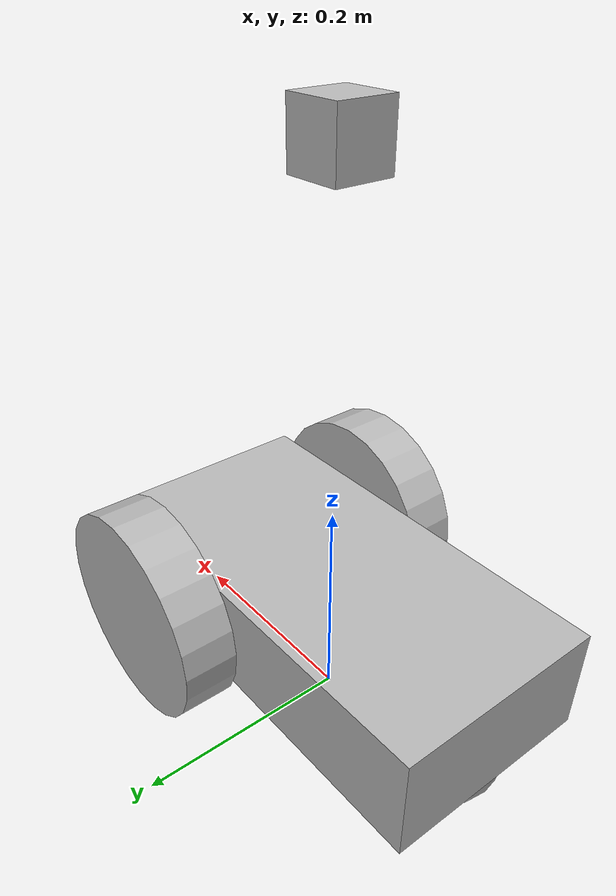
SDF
<?xml version="1.0"?>
<sdf version='1.4'>
  <model name="myrobot">
    <static>false</static>
    <link name="chassis">
        <pose>0 0 .1 0 0 0</pose>

        <collision name="collision">
            <geometry>
                <box>
                    <size>.4 .2 .1</size>
                </box>
            </geometry>
        </collision>

        <visual name="visual">
            <geometry>
                <box>
                    <size>.4 .2 .1</size>
                </box>
            </geometry>
        </visual>

        <collision name='caster_collision'>
            <pose>-0.15 0 -0.05 0 0 0</pose>
            <geometry>
                <sphere>
                <radius>.05</radius>
              </sphere>
            </geometry>

            <surface>
              <friction>
                <ode>
                  <mu>0</mu>
                  <mu2>0</mu2>
                  <slip1>1.0</slip1>
                  <slip2>1.0</slip2>
                </ode>
              </friction>
            </surface>
        </collision>

        <visual name='caster_visual'>
            <pose>-0.15 0 -0.05 0 0 0</pose>
            <geometry>
              <sphere>
                <radius>.05</radius>
              </sphere>
            </geometry>
        </visual>
    </link>
    <link name="left_wheel">
        <pose>0.1 0.13 0.1 0 1.5707 1.5707</pose>
        <collision name="collision">
          <geometry>
            <cylinder>
              <radius>.1</radius>
              <length>.05</length>
            </cylinder>
          </geometry>
        </collision>
        <visual name="visual">
          <geometry>
            <cylinder>
              <radius>.1</radius>
              <length>.05</length>
            </cylinder>
          </geometry>
        </visual>
      </link>
    <link name="right_wheel">
        <pose>0.1 -0.13 0.1 0 1.5707 1.5707</pose>
        <collision name="collision">
          <geometry>
            <cylinder>
              <radius>.1</radius>
              <length>.05</length>
            </cylinder>
          </geometry>
        </collision>
        <visual name="visual">
          <geometry>
            <cylinder>
              <radius>.1</radius>
              <length>.05</length>
            </cylinder>
          </geometry>
        </visual>
      </link>

    <joint type="revolute" name="left_wheel_hinge">
        <pose>0 0 -0.03 0 0 0</pose>
        <child>left_wheel</child>
        <parent>chassis</parent>
        <axis>
          <xyz>0 1 0</xyz>
        </axis>
      </joint>

      <joint type="revolute" name="right_wheel_hinge">
        <pose>0 0 0.03 0 0 0</pose>
        <child>right_wheel</child>
        <parent>chassis</parent>
        <axis>
          <xyz>0 1 0</xyz>
        </axis>
      </joint>

      <link name="logical_camera">
          <pose>0 0 0.5 0 0 0</pose>
          <sensor name="logical_camera" type="logical_camera">
              <logical_camera>
                  <near>0.55</near>
                  <far>2.5</far>
                  <horizontal_fov>1.05</horizontal_fov>
                  <aspect_ratio>1.8</aspect_ratio>
              </logical_camera>

              <plugin name="logical_camera_plugin" filename="liblogical_camera.so"/>

              <visualize>true</visualize>
              <always_on>true</always_on>
              <update_rate>10</update_rate>
          </sensor>
        <visual name="visual">
            <geometry>
                <box>
                    <size>.05 .05 .05</size>
                </box>
            </geometry>
        </visual>
      </link>

      <link name="mycamera">
          <pose>0 0 0.5 0 0 0</pose>
          <sensor name="mycamera" type="camera">
              <camera>
                  <horizontal_fov>2.09</horizontal_fov>
                  <image>
                      <width>640</width>
                      <height>480</height>
                      <format>R8G8B8</format>
                  </image>
                  <clip>
                      <near>0.1</near>
                      <far>100</far>
                  </clip>
                  <noise>
                      <type>gaussian</type>
                      <mean>0.0</mean>
                      <stddev>0.005</stddev>
                  </noise>
              </camera>

              <plugin name="mycamera_plugin" filename="/home/ism/work/kinetic/install_isolated/lib/libgazebo_ros_camera.so">
                  <frameName>/mycamera_link</frameName>
                  <imageTopicName>/myrobot/image_raw</imageTopicName>
              </plugin>

              <visualize>true</visualize>
              <always_on>true</always_on>
              <update_rate>30</update_rate>
          </sensor>
        <visual name="visual">
            <geometry>
                <box>
                    <size>.02 .02 .02</size>
                </box>
            </geometry>
        </visual>
      </link>

      <joint type="fixed" name="logicalcamjoint">
        <pose>1 0 0 0 0 0</pose>
        <child>logical_camera</child>
        <parent>chassis</parent>
        <axis>
          <xyz>0 1 0</xyz>
        </axis>
      </joint>

      <joint type="fixed" name="camjoint">
        <pose>1 0 0 0 0 0</pose>
        <child>mycamera</child>
        <parent>chassis</parent>
        <axis>
          <xyz>0 1 0</xyz>
        </axis>
      </joint>
</model>
</sdf>
